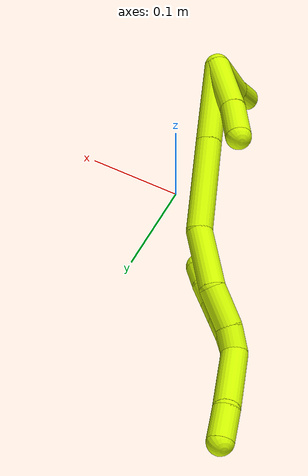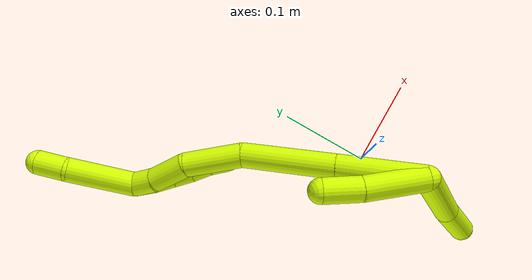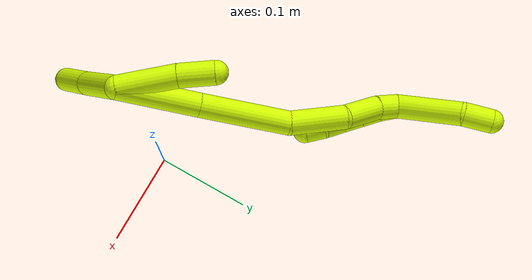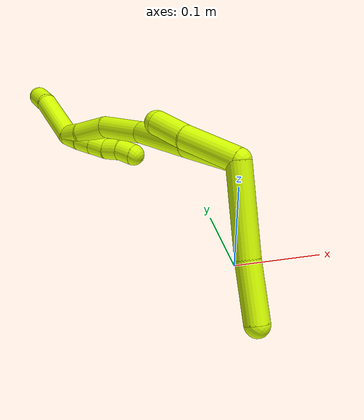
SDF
<sdf version="1.7">
 <world name="default">
  <model name="15">
   <static>0</static>
   <link name="15">
    <collision name="collision-cylinder-e_1_2_8">
     <pose>-0.025604 -0.022668 -0.029853 2.49215 -0.599275 -1.48504</pose>
     <geometry><cylinder><radius>0.0125</radius><length>0.090787</length></cylinder></geometry>
     <surface>
      <friction><ode><mu>1.16</mu><mu2>1.16</mu2><slip1>0</slip1><slip2>0</slip2></ode></friction>
      <contact><ode><kp>1e+06</kp><kd>1</kd><max_vel>0</max_vel><min_depth>0.001</min_depth></ode></contact>
     </surface>
    </collision>
    <visual name="visual-cylinder-e_1_2_8">
     <pose>-0.025604 -0.022668 -0.029853 2.49215 -0.599275 -1.48504</pose>
     <geometry><cylinder><radius>0.0125</radius><length>0.090787</length></cylinder></geometry>
     <material><ambient>0.835294 1 0 1</ambient></material>
    </visual>
    <collision name="collision-cylinder-e_2_8_6">
     <pose>-0.065488 -0.060555 -0.080705 2.51445 -0.503294 -1.34073</pose>
     <geometry><cylinder><radius>0.0125</radius><length>0.059213</length></cylinder></geometry>
     <surface>
      <friction><ode><mu>1.16</mu><mu2>1.16</mu2><slip1>0</slip1><slip2>0</slip2></ode></friction>
      <contact><ode><kp>1e+06</kp><kd>1</kd><max_vel>0</max_vel><min_depth>0.001</min_depth></ode></contact>
     </surface>
    </collision>
    <visual name="visual-cylinder-e_2_8_6">
     <pose>-0.065488 -0.060555 -0.080705 2.51445 -0.503294 -1.34073</pose>
     <geometry><cylinder><radius>0.0125</radius><length>0.059213</length></cylinder></geometry>
     <material><ambient>0.835294 1 0 1</ambient></material>
    </visual>
    <collision name="collision-cylinder-e_1_2_9">
     <pose>-0.008824 -0.001166 0.029668 0.039291 -0.288893 -0.005716</pose>
     <geometry><cylinder><radius>0.0125</radius><length>0.061949</length></cylinder></geometry>
     <surface>
      <friction><ode><mu>1.16</mu><mu2>1.16</mu2><slip1>0</slip1><slip2>0</slip2></ode></friction>
      <contact><ode><kp>1e+06</kp><kd>1</kd><max_vel>0</max_vel><min_depth>0.001</min_depth></ode></contact>
     </surface>
    </collision>
    <visual name="visual-cylinder-e_1_2_9">
     <pose>-0.008824 -0.001166 0.029668 0.039291 -0.288893 -0.005716</pose>
     <geometry><cylinder><radius>0.0125</radius><length>0.061949</length></cylinder></geometry>
     <material><ambient>0.835294 1 0 1</ambient></material>
    </visual>
    <collision name="collision-cylinder-e_2_9_5">
     <pose>-0.023575 -0.001016 0.077367 -0.072892 -0.31674 0.011646</pose>
     <geometry><cylinder><radius>0.0125</radius><length>0.038051</length></cylinder></geometry>
     <surface>
      <friction><ode><mu>1.16</mu><mu2>1.16</mu2><slip1>0</slip1><slip2>0</slip2></ode></friction>
      <contact><ode><kp>1e+06</kp><kd>1</kd><max_vel>0</max_vel><min_depth>0.001</min_depth></ode></contact>
     </surface>
    </collision>
    <visual name="visual-cylinder-e_2_9_5">
     <pose>-0.023575 -0.001016 0.077367 -0.072892 -0.31674 0.011646</pose>
     <geometry><cylinder><radius>0.0125</radius><length>0.038051</length></cylinder></geometry>
     <material><ambient>0.835294 1 0 1</ambient></material>
    </visual>
    <collision name="collision-cylinder-e_1_2_10">
     <pose>-0.026029 0.008679 0.032158 -0.263618 -0.663316 0.09125</pose>
     <geometry><cylinder><radius>0.0125</radius><length>0.084545</length></cylinder></geometry>
     <surface>
      <friction><ode><mu>1.16</mu><mu2>1.16</mu2><slip1>0</slip1><slip2>0</slip2></ode></friction>
      <contact><ode><kp>1e+06</kp><kd>1</kd><max_vel>0</max_vel><min_depth>0.001</min_depth></ode></contact>
     </surface>
    </collision>
    <visual name="visual-cylinder-e_1_2_10">
     <pose>-0.026029 0.008679 0.032158 -0.263618 -0.663316 0.09125</pose>
     <geometry><cylinder><radius>0.0125</radius><length>0.084545</length></cylinder></geometry>
     <material><ambient>0.835294 1 0 1</ambient></material>
    </visual>
    <collision name="collision-cylinder-e_2_10_11">
     <pose>-0.080315 0.026777 0.100199 -0.256685 -0.650942 0.087048</pose>
     <geometry><cylinder><radius>0.0125</radius><length>0.093268</length></cylinder></geometry>
     <surface>
      <friction><ode><mu>1.16</mu><mu2>1.16</mu2><slip1>0</slip1><slip2>0</slip2></ode></friction>
      <contact><ode><kp>1e+06</kp><kd>1</kd><max_vel>0</max_vel><min_depth>0.001</min_depth></ode></contact>
     </surface>
    </collision>
    <visual name="visual-cylinder-e_2_10_11">
     <pose>-0.080315 0.026777 0.100199 -0.256685 -0.650942 0.087048</pose>
     <geometry><cylinder><radius>0.0125</radius><length>0.093268</length></cylinder></geometry>
     <material><ambient>0.835294 1 0 1</ambient></material>
    </visual>
    <collision name="collision-cylinder-e_3_11_12">
     <pose>-0.123696 0.034066 0.161286 0.084272 -0.538905 -0.023286</pose>
     <geometry><cylinder><radius>0.0125</radius><length>0.058943</length></cylinder></geometry>
     <surface>
      <friction><ode><mu>1.16</mu><mu2>1.16</mu2><slip1>0</slip1><slip2>0</slip2></ode></friction>
      <contact><ode><kp>1e+06</kp><kd>1</kd><max_vel>0</max_vel><min_depth>0.001</min_depth></ode></contact>
     </surface>
    </collision>
    <visual name="visual-cylinder-e_3_11_12">
     <pose>-0.123696 0.034066 0.161286 0.084272 -0.538905 -0.023286</pose>
     <geometry><cylinder><radius>0.0125</radius><length>0.058943</length></cylinder></geometry>
     <material><ambient>0.835294 1 0 1</ambient></material>
    </visual>
    <collision name="collision-cylinder-e_4_12_13">
     <pose>-0.151372 0.025487 0.199944 0.447055 -0.699405 -0.16543</pose>
     <geometry><cylinder><radius>0.0125</radius><length>0.038993</length></cylinder></geometry>
     <surface>
      <friction><ode><mu>1.16</mu><mu2>1.16</mu2><slip1>0</slip1><slip2>0</slip2></ode></friction>
      <contact><ode><kp>1e+06</kp><kd>1</kd><max_vel>0</max_vel><min_depth>0.001</min_depth></ode></contact>
     </surface>
    </collision>
    <visual name="visual-cylinder-e_4_12_13">
     <pose>-0.151372 0.025487 0.199944 0.447055 -0.699405 -0.16543</pose>
     <geometry><cylinder><radius>0.0125</radius><length>0.038993</length></cylinder></geometry>
     <material><ambient>0.835294 1 0 1</ambient></material>
    </visual>
    <collision name="collision-cylinder-e_5_13_1">
     <pose>-0.172172 0.017436 0.222139 0.181214 -0.748105 -0.071298</pose>
     <geometry><cylinder><radius>0.0125</radius><length>0.02425</length></cylinder></geometry>
     <surface>
      <friction><ode><mu>1.16</mu><mu2>1.16</mu2><slip1>0</slip1><slip2>0</slip2></ode></friction>
      <contact><ode><kp>1e+06</kp><kd>1</kd><max_vel>0</max_vel><min_depth>0.001</min_depth></ode></contact>
     </surface>
    </collision>
    <visual name="visual-cylinder-e_5_13_1">
     <pose>-0.172172 0.017436 0.222139 0.181214 -0.748105 -0.071298</pose>
     <geometry><cylinder><radius>0.0125</radius><length>0.02425</length></cylinder></geometry>
     <material><ambient>0.835294 1 0 1</ambient></material>
    </visual>
    <collision name="collision-cylinder-e_1_1_14">
     <pose>-0.18583 0.027782 0.26305 -0.355614 -0.156375 0.028157</pose>
     <geometry><cylinder><radius>0.0125</radius><length>0.06948</length></cylinder></geometry>
     <surface>
      <friction><ode><mu>1.16</mu><mu2>1.16</mu2><slip1>0</slip1><slip2>0</slip2></ode></friction>
      <contact><ode><kp>1e+06</kp><kd>1</kd><max_vel>0</max_vel><min_depth>0.001</min_depth></ode></contact>
     </surface>
    </collision>
    <visual name="visual-cylinder-e_1_1_14">
     <pose>-0.18583 0.027782 0.26305 -0.355614 -0.156375 0.028157</pose>
     <geometry><cylinder><radius>0.0125</radius><length>0.06948</length></cylinder></geometry>
     <material><ambient>0.835294 1 0 1</ambient></material>
    </visual>
    <collision name="collision-cylinder-e_2_14_4">
     <pose>-0.198561 0.044683 0.307659 -0.37892 -0.500324 0.097917</pose>
     <geometry><cylinder><radius>0.0125</radius><length>0.03052</length></cylinder></geometry>
     <surface>
      <friction><ode><mu>1.16</mu><mu2>1.16</mu2><slip1>0</slip1><slip2>0</slip2></ode></friction>
      <contact><ode><kp>1e+06</kp><kd>1</kd><max_vel>0</max_vel><min_depth>0.001</min_depth></ode></contact>
     </surface>
    </collision>
    <visual name="visual-cylinder-e_2_14_4">
     <pose>-0.198561 0.044683 0.307659 -0.37892 -0.500324 0.097917</pose>
     <geometry><cylinder><radius>0.0125</radius><length>0.03052</length></cylinder></geometry>
     <material><ambient>0.835294 1 0 1</ambient></material>
    </visual>
    <collision name="collision-cylinder-e_1_1_15">
     <pose>-0.177262 0.016366 0.221408 -3.08548 0.321298 -2.79861</pose>
     <geometry><cylinder><radius>0.0125</radius><length>0.02</length></cylinder></geometry>
     <surface>
      <friction><ode><mu>1.16</mu><mu2>1.16</mu2><slip1>0</slip1><slip2>0</slip2></ode></friction>
      <contact><ode><kp>1e+06</kp><kd>1</kd><max_vel>0</max_vel><min_depth>0.001</min_depth></ode></contact>
     </surface>
    </collision>
    <visual name="visual-cylinder-e_1_1_15">
     <pose>-0.177262 0.016366 0.221408 -3.08548 0.321298 -2.79861</pose>
     <geometry><cylinder><radius>0.0125</radius><length>0.02</length></cylinder></geometry>
     <material><ambient>0.835294 1 0 1</ambient></material>
    </visual>
    <collision name="collision-cylinder-e_2_15_16">
     <pose>-0.171064 0.018601 0.202561 -2.96196 0.308899 -2.09273</pose>
     <geometry><cylinder><radius>0.0125</radius><length>0.02</length></cylinder></geometry>
     <surface>
      <friction><ode><mu>1.16</mu><mu2>1.16</mu2><slip1>0</slip1><slip2>0</slip2></ode></friction>
      <contact><ode><kp>1e+06</kp><kd>1</kd><max_vel>0</max_vel><min_depth>0.001</min_depth></ode></contact>
     </surface>
    </collision>
    <visual name="visual-cylinder-e_2_15_16">
     <pose>-0.171064 0.018601 0.202561 -2.96196 0.308899 -2.09273</pose>
     <geometry><cylinder><radius>0.0125</radius><length>0.02</length></cylinder></geometry>
     <material><ambient>0.835294 1 0 1</ambient></material>
    </visual>
    <collision name="collision-cylinder-e_3_16_17">
     <pose>-0.165052 0.021972 0.183787 -2.96583 0.30173 -2.09104</pose>
     <geometry><cylinder><radius>0.0125</radius><length>0.02</length></cylinder></geometry>
     <surface>
      <friction><ode><mu>1.16</mu><mu2>1.16</mu2><slip1>0</slip1><slip2>0</slip2></ode></friction>
      <contact><ode><kp>1e+06</kp><kd>1</kd><max_vel>0</max_vel><min_depth>0.001</min_depth></ode></contact>
     </surface>
    </collision>
    <visual name="visual-cylinder-e_3_16_17">
     <pose>-0.165052 0.021972 0.183787 -2.96583 0.30173 -2.09104</pose>
     <geometry><cylinder><radius>0.0125</radius><length>0.02</length></cylinder></geometry>
     <material><ambient>0.835294 1 0 1</ambient></material>
    </visual>
    <collision name="collision-cylinder-e_4_17_18">
     <pose>-0.157474 0.026257 0.165903 -2.84257 0.478642 -2.0354</pose>
     <geometry><cylinder><radius>0.0125</radius><length>0.02</length></cylinder></geometry>
     <surface>
      <friction><ode><mu>1.16</mu><mu2>1.16</mu2><slip1>0</slip1><slip2>0</slip2></ode></friction>
      <contact><ode><kp>1e+06</kp><kd>1</kd><max_vel>0</max_vel><min_depth>0.001</min_depth></ode></contact>
     </surface>
    </collision>
    <visual name="visual-cylinder-e_4_17_18">
     <pose>-0.157474 0.026257 0.165903 -2.84257 0.478642 -2.0354</pose>
     <geometry><cylinder><radius>0.0125</radius><length>0.02</length></cylinder></geometry>
     <material><ambient>0.835294 1 0 1</ambient></material>
    </visual>
    <collision name="collision-cylinder-e_5_18_3">
     <pose>-0.149773 0.029798 0.147958 -3.04398 0.314778 -2.54444</pose>
     <geometry><cylinder><radius>0.0125</radius><length>0.02</length></cylinder></geometry>
     <surface>
      <friction><ode><mu>1.16</mu><mu2>1.16</mu2><slip1>0</slip1><slip2>0</slip2></ode></friction>
      <contact><ode><kp>1e+06</kp><kd>1</kd><max_vel>0</max_vel><min_depth>0.001</min_depth></ode></contact>
     </surface>
    </collision>
    <visual name="visual-cylinder-e_5_18_3">
     <pose>-0.149773 0.029798 0.147958 -3.04398 0.314778 -2.54444</pose>
     <geometry><cylinder><radius>0.0125</radius><length>0.02</length></cylinder></geometry>
     <material><ambient>0.835294 1 0 1</ambient></material>
    </visual>
    <collision name="collision-sphere-3">
     <pose>-0.146677 0.030725 0.138494 0 -0 0</pose>
     <geometry><sphere><radius>0.0125</radius></sphere></geometry>
     <surface>
      <friction><ode><mu>1.16</mu><mu2>1.16</mu2><slip1>0</slip1><slip2>0</slip2></ode></friction>
      <contact><ode><kp>1e+06</kp><kd>1</kd><max_vel>0</max_vel><min_depth>0.001</min_depth></ode></contact>
     </surface>
    </collision>
    <visual name="visual-sphere-3">
     <pose>-0.146677 0.030725 0.138494 0 -0 0</pose>
     <geometry><sphere><radius>0.0125</radius></sphere></geometry>
     <material><ambient>0.835294 1 0 1</ambient></material>
    </visual>
    <collision name="collision-sphere-10">
     <pose>-0.052057 0.017359 0.064317 0 -0 0</pose>
     <geometry><sphere><radius>0.0125</radius></sphere></geometry>
     <surface>
      <friction><ode><mu>1.16</mu><mu2>1.16</mu2><slip1>0</slip1><slip2>0</slip2></ode></friction>
      <contact><ode><kp>1e+06</kp><kd>1</kd><max_vel>0</max_vel><min_depth>0.001</min_depth></ode></contact>
     </surface>
    </collision>
    <visual name="visual-sphere-10">
     <pose>-0.052057 0.017359 0.064317 0 -0 0</pose>
     <geometry><sphere><radius>0.0125</radius></sphere></geometry>
     <material><ambient>0.835294 1 0 1</ambient></material>
    </visual>
    <collision name="collision-sphere-5">
     <pose>-0.029501 0.000301 0.095398 0 -0 0</pose>
     <geometry><sphere><radius>0.0125</radius></sphere></geometry>
     <surface>
      <friction><ode><mu>1.16</mu><mu2>1.16</mu2><slip1>0</slip1><slip2>0</slip2></ode></friction>
      <contact><ode><kp>1e+06</kp><kd>1</kd><max_vel>0</max_vel><min_depth>0.001</min_depth></ode></contact>
     </surface>
    </collision>
    <visual name="visual-sphere-5">
     <pose>-0.029501 0.000301 0.095398 0 -0 0</pose>
     <geometry><sphere><radius>0.0125</radius></sphere></geometry>
     <material><ambient>0.835294 1 0 1</ambient></material>
    </visual>
    <collision name="collision-sphere-6">
     <pose>-0.079767 -0.075775 -0.101705 0 -0 0</pose>
     <geometry><sphere><radius>0.0125</radius></sphere></geometry>
     <surface>
      <friction><ode><mu>1.16</mu><mu2>1.16</mu2><slip1>0</slip1><slip2>0</slip2></ode></friction>
      <contact><ode><kp>1e+06</kp><kd>1</kd><max_vel>0</max_vel><min_depth>0.001</min_depth></ode></contact>
     </surface>
    </collision>
    <visual name="visual-sphere-6">
     <pose>-0.079767 -0.075775 -0.101705 0 -0 0</pose>
     <geometry><sphere><radius>0.0125</radius></sphere></geometry>
     <material><ambient>0.835294 1 0 1</ambient></material>
    </visual>
    <collision name="collision-sphere-9">
     <pose>-0.017649 -0.002333 0.059336 0 -0 0</pose>
     <geometry><sphere><radius>0.0125</radius></sphere></geometry>
     <surface>
      <friction><ode><mu>1.16</mu><mu2>1.16</mu2><slip1>0</slip1><slip2>0</slip2></ode></friction>
      <contact><ode><kp>1e+06</kp><kd>1</kd><max_vel>0</max_vel><min_depth>0.001</min_depth></ode></contact>
     </surface>
    </collision>
    <visual name="visual-sphere-9">
     <pose>-0.017649 -0.002333 0.059336 0 -0 0</pose>
     <geometry><sphere><radius>0.0125</radius></sphere></geometry>
     <material><ambient>0.835294 1 0 1</ambient></material>
    </visual>
    <collision name="collision-sphere-2">
     <geometry><sphere><radius>0.0125</radius></sphere></geometry>
     <surface>
      <friction><ode><mu>1.16</mu><mu2>1.16</mu2><slip1>0</slip1><slip2>0</slip2></ode></friction>
      <contact><ode><kp>1e+06</kp><kd>1</kd><max_vel>0</max_vel><min_depth>0.001</min_depth></ode></contact>
     </surface>
    </collision>
    <visual name="visual-sphere-2">
     <geometry><sphere><radius>0.0125</radius></sphere></geometry>
     <material><ambient>0.835294 1 0 1</ambient></material>
    </visual>
    <collision name="collision-sphere-8">
     <pose>-0.051208 -0.045336 -0.059706 0 -0 0</pose>
     <geometry><sphere><radius>0.0125</radius></sphere></geometry>
     <surface>
      <friction><ode><mu>1.16</mu><mu2>1.16</mu2><slip1>0</slip1><slip2>0</slip2></ode></friction>
      <contact><ode><kp>1e+06</kp><kd>1</kd><max_vel>0</max_vel><min_depth>0.001</min_depth></ode></contact>
     </surface>
    </collision>
    <visual name="visual-sphere-8">
     <pose>-0.051208 -0.045336 -0.059706 0 -0 0</pose>
     <geometry><sphere><radius>0.0125</radius></sphere></geometry>
     <material><ambient>0.835294 1 0 1</ambient></material>
    </visual>
    <collision name="collision-sphere-11">
     <pose>-0.108572 0.036195 0.136081 0 -0 0</pose>
     <geometry><sphere><radius>0.0125</radius></sphere></geometry>
     <surface>
      <friction><ode><mu>1.16</mu><mu2>1.16</mu2><slip1>0</slip1><slip2>0</slip2></ode></friction>
      <contact><ode><kp>1e+06</kp><kd>1</kd><max_vel>0</max_vel><min_depth>0.001</min_depth></ode></contact>
     </surface>
    </collision>
    <visual name="visual-sphere-11">
     <pose>-0.108572 0.036195 0.136081 0 -0 0</pose>
     <geometry><sphere><radius>0.0125</radius></sphere></geometry>
     <material><ambient>0.835294 1 0 1</ambient></material>
    </visual>
    <collision name="collision-sphere-12">
     <pose>-0.138821 0.031937 0.186491 0 -0 0</pose>
     <geometry><sphere><radius>0.0125</radius></sphere></geometry>
     <surface>
      <friction><ode><mu>1.16</mu><mu2>1.16</mu2><slip1>0</slip1><slip2>0</slip2></ode></friction>
      <contact><ode><kp>1e+06</kp><kd>1</kd><max_vel>0</max_vel><min_depth>0.001</min_depth></ode></contact>
     </surface>
    </collision>
    <visual name="visual-sphere-12">
     <pose>-0.138821 0.031937 0.186491 0 -0 0</pose>
     <geometry><sphere><radius>0.0125</radius></sphere></geometry>
     <material><ambient>0.835294 1 0 1</ambient></material>
    </visual>
    <collision name="collision-sphere-13">
     <pose>-0.163923 0.019038 0.213397 0 -0 0</pose>
     <geometry><sphere><radius>0.0125</radius></sphere></geometry>
     <surface>
      <friction><ode><mu>1.16</mu><mu2>1.16</mu2><slip1>0</slip1><slip2>0</slip2></ode></friction>
      <contact><ode><kp>1e+06</kp><kd>1</kd><max_vel>0</max_vel><min_depth>0.001</min_depth></ode></contact>
     </surface>
    </collision>
    <visual name="visual-sphere-13">
     <pose>-0.163923 0.019038 0.213397 0 -0 0</pose>
     <geometry><sphere><radius>0.0125</radius></sphere></geometry>
     <material><ambient>0.835294 1 0 1</ambient></material>
    </visual>
    <collision name="collision-sphere-1">
     <pose>-0.18042 0.015834 0.230881 0 -0 0</pose>
     <geometry><sphere><radius>0.0125</radius></sphere></geometry>
     <surface>
      <friction><ode><mu>1.16</mu><mu2>1.16</mu2><slip1>0</slip1><slip2>0</slip2></ode></friction>
      <contact><ode><kp>1e+06</kp><kd>1</kd><max_vel>0</max_vel><min_depth>0.001</min_depth></ode></contact>
     </surface>
    </collision>
    <visual name="visual-sphere-1">
     <pose>-0.18042 0.015834 0.230881 0 -0 0</pose>
     <geometry><sphere><radius>0.0125</radius></sphere></geometry>
     <material><ambient>0.835294 1 0 1</ambient></material>
    </visual>
    <collision name="collision-sphere-18">
     <pose>-0.152869 0.028872 0.157421 0 -0 0</pose>
     <geometry><sphere><radius>0.0125</radius></sphere></geometry>
     <surface>
      <friction><ode><mu>1.16</mu><mu2>1.16</mu2><slip1>0</slip1><slip2>0</slip2></ode></friction>
      <contact><ode><kp>1e+06</kp><kd>1</kd><max_vel>0</max_vel><min_depth>0.001</min_depth></ode></contact>
     </surface>
    </collision>
    <visual name="visual-sphere-18">
     <pose>-0.152869 0.028872 0.157421 0 -0 0</pose>
     <geometry><sphere><radius>0.0125</radius></sphere></geometry>
     <material><ambient>0.835294 1 0 1</ambient></material>
    </visual>
    <collision name="collision-sphere-14">
     <pose>-0.191241 0.03973 0.295219 0 -0 0</pose>
     <geometry><sphere><radius>0.0125</radius></sphere></geometry>
     <surface>
      <friction><ode><mu>1.16</mu><mu2>1.16</mu2><slip1>0</slip1><slip2>0</slip2></ode></friction>
      <contact><ode><kp>1e+06</kp><kd>1</kd><max_vel>0</max_vel><min_depth>0.001</min_depth></ode></contact>
     </surface>
    </collision>
    <visual name="visual-sphere-14">
     <pose>-0.191241 0.03973 0.295219 0 -0 0</pose>
     <geometry><sphere><radius>0.0125</radius></sphere></geometry>
     <material><ambient>0.835294 1 0 1</ambient></material>
    </visual>
    <collision name="collision-sphere-4">
     <pose>-0.205881 0.049636 0.320099 0 -0 0</pose>
     <geometry><sphere><radius>0.0125</radius></sphere></geometry>
     <surface>
      <friction><ode><mu>1.16</mu><mu2>1.16</mu2><slip1>0</slip1><slip2>0</slip2></ode></friction>
      <contact><ode><kp>1e+06</kp><kd>1</kd><max_vel>0</max_vel><min_depth>0.001</min_depth></ode></contact>
     </surface>
    </collision>
    <visual name="visual-sphere-4">
     <pose>-0.205881 0.049636 0.320099 0 -0 0</pose>
     <geometry><sphere><radius>0.0125</radius></sphere></geometry>
     <material><ambient>0.835294 1 0 1</ambient></material>
    </visual>
    <collision name="collision-sphere-15">
     <pose>-0.174104 0.016899 0.211935 0 -0 0</pose>
     <geometry><sphere><radius>0.0125</radius></sphere></geometry>
     <surface>
      <friction><ode><mu>1.16</mu><mu2>1.16</mu2><slip1>0</slip1><slip2>0</slip2></ode></friction>
      <contact><ode><kp>1e+06</kp><kd>1</kd><max_vel>0</max_vel><min_depth>0.001</min_depth></ode></contact>
     </surface>
    </collision>
    <visual name="visual-sphere-15">
     <pose>-0.174104 0.016899 0.211935 0 -0 0</pose>
     <geometry><sphere><radius>0.0125</radius></sphere></geometry>
     <material><ambient>0.835294 1 0 1</ambient></material>
    </visual>
    <collision name="collision-sphere-16">
     <pose>-0.168024 0.020303 0.193188 0 -0 0</pose>
     <geometry><sphere><radius>0.0125</radius></sphere></geometry>
     <surface>
      <friction><ode><mu>1.16</mu><mu2>1.16</mu2><slip1>0</slip1><slip2>0</slip2></ode></friction>
      <contact><ode><kp>1e+06</kp><kd>1</kd><max_vel>0</max_vel><min_depth>0.001</min_depth></ode></contact>
     </surface>
    </collision>
    <visual name="visual-sphere-16">
     <pose>-0.168024 0.020303 0.193188 0 -0 0</pose>
     <geometry><sphere><radius>0.0125</radius></sphere></geometry>
     <material><ambient>0.835294 1 0 1</ambient></material>
    </visual>
    <collision name="collision-sphere-17">
     <pose>-0.16208 0.023642 0.174386 0 -0 0</pose>
     <geometry><sphere><radius>0.0125</radius></sphere></geometry>
     <surface>
      <friction><ode><mu>1.16</mu><mu2>1.16</mu2><slip1>0</slip1><slip2>0</slip2></ode></friction>
      <contact><ode><kp>1e+06</kp><kd>1</kd><max_vel>0</max_vel><min_depth>0.001</min_depth></ode></contact>
     </surface>
    </collision>
    <visual name="visual-sphere-17">
     <pose>-0.16208 0.023642 0.174386 0 -0 0</pose>
     <geometry><sphere><radius>0.0125</radius></sphere></geometry>
     <material><ambient>0.835294 1 0 1</ambient></material>
    </visual>
    <inertial>
     <pose>-0.093453 0.008607 0.104195 0 -0 0</pose>
     <mass>0.75</mass>
     <inertia>
      <ixx>9.7e-05</ixx>
      <ixy>0</ixy>
      <ixz>0</ixz>
      <iyy>0.000166</iyy>
      <iyz>0</iyz>
      <izz>0.000177</izz>
     </inertia>
    </inertial>
   </link>
   <pose>-0.019347 -0.051191 0.159365 0.555346 -1.12772 -1.44424</pose>
  </model>
 </world>
</sdf>
